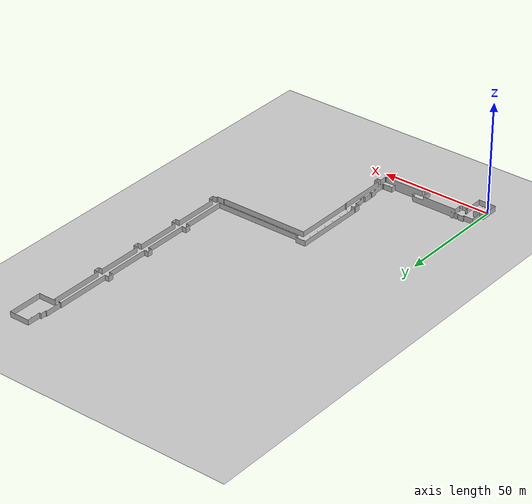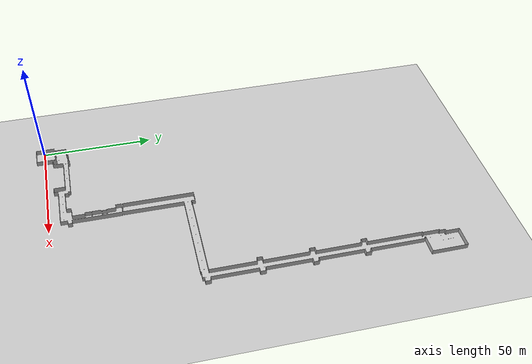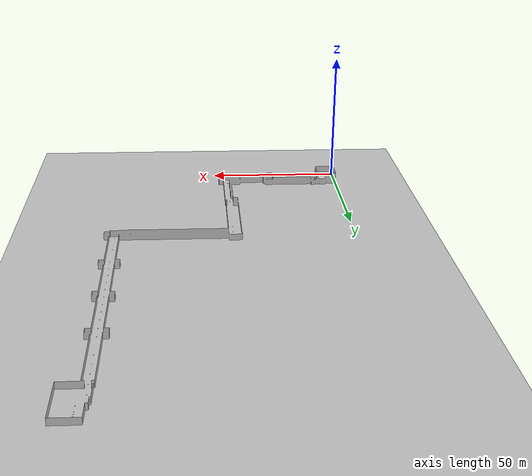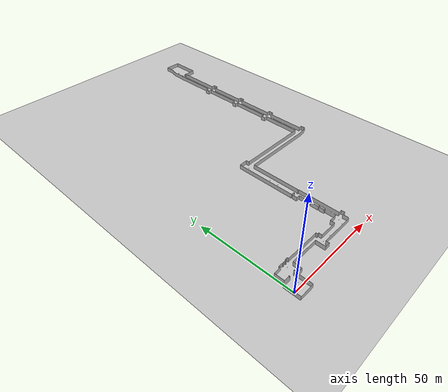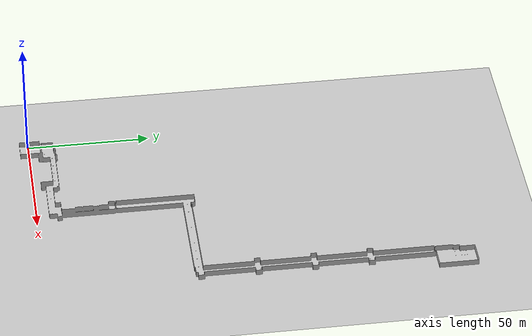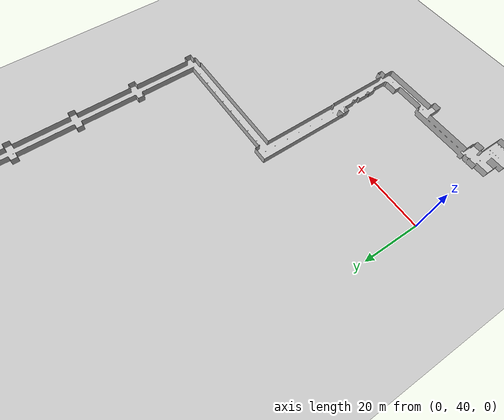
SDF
<sdf version="1.4">
 <world name="default">
  <light name="sun" type="directional">
   <pose>0 0 10 0 -0 0</pose>
   <diffuse>0.8 0.8 0.8 1</diffuse>
   <specular>0.2 0.2 0.2 1</specular>
   <attenuation>
    <range>1000</range>
    <constant>0.9</constant>
    <linear>0.01</linear>
    <quadratic>0.001</quadratic>
   </attenuation>
   <direction>-0.5 0.1 -0.9</direction>
  </light>
  <model name="ground_plane">
   <static>1</static>
   <link name="link">
    <collision name="collision">
     <geometry><plane><normal>0 0 1</normal><size>100 100</size></plane></geometry>
     <surface><friction><ode><mu>100</mu><mu2>50</mu2></ode></friction></surface>
    </collision>
    <visual name="visual">
     <cast_shadows>0</cast_shadows>
     <geometry><plane><normal>0 0 1</normal><size>100 100</size></plane></geometry>
     <material>
      <script><uri>file://media/materials/scripts/gazebo.material</uri><name>Gazebo/Grey</name></script>
     </material>
    </visual>
    <velocity_decay><linear>0</linear><angular>0</angular></velocity_decay>
   </link>
  </model>
  <physics type="ode">
   <max_step_size>0.001</max_step_size>
   <real_time_factor>1</real_time_factor>
   <real_time_update_rate>1000</real_time_update_rate>
   <gravity>0 0 -9.8</gravity>
  </physics>
  <scene><ambient>0.4 0.4 0.4 1</ambient><background>0.7 0.7 0.7 1</background><shadows>1</shadows></scene>
  <spherical_coordinates>
   <surface_model>EARTH_WGS84</surface_model>
   <latitude_deg>0</latitude_deg>
   <longitude_deg>0</longitude_deg>
   <elevation>0</elevation>
   <heading_deg>0</heading_deg>
  </spherical_coordinates>
  <model name="agvs_floor_1">
   <static>1</static>
   <pose>-1 -3.55049 0 0 -0 0</pose>
   <link name="walls">
    <collision name="collision">
     <geometry><mesh><uri>model://agvs_floor_1/meshes/floor_1.dae</uri></mesh></geometry>
    </collision>
    <visual name="visual">
     <geometry><mesh><uri>model://agvs_floor_1/meshes/floor_1.dae</uri></mesh></geometry>
     <cast_shadows>0</cast_shadows>
    </visual>
    <velocity_decay><linear>0</linear><angular>0</angular></velocity_decay>
   </link>
   <link name="magnets">
    <visual name="visual">
     <geometry><mesh><uri>model://agvs_floor_1/meshes/floor_magnets_1.dae</uri></mesh></geometry>
     <cast_shadows>0</cast_shadows>
    </visual>
    <velocity_decay><linear>0</linear><angular>0</angular></velocity_decay>
   </link>
  </model>
 </world>
</sdf>
